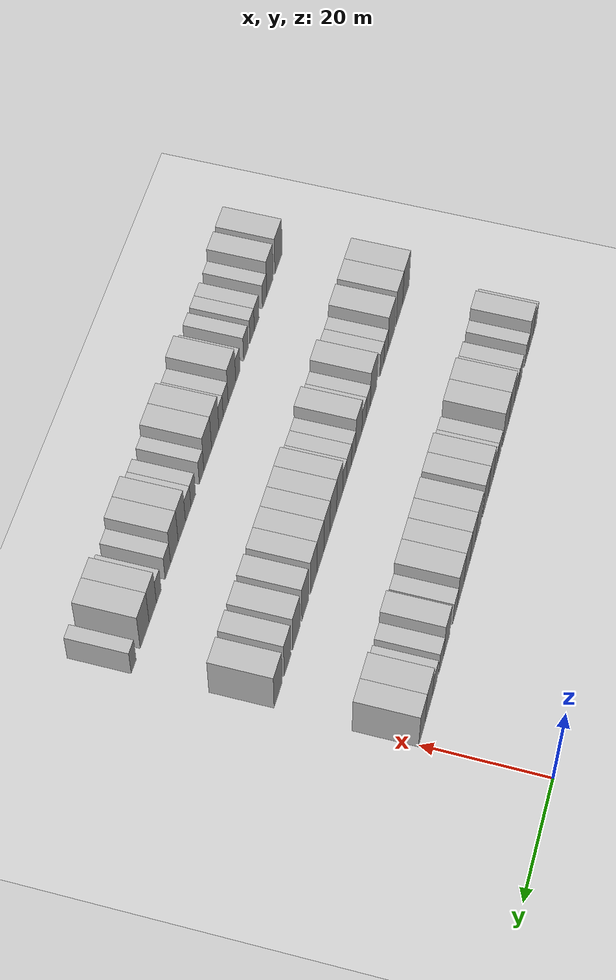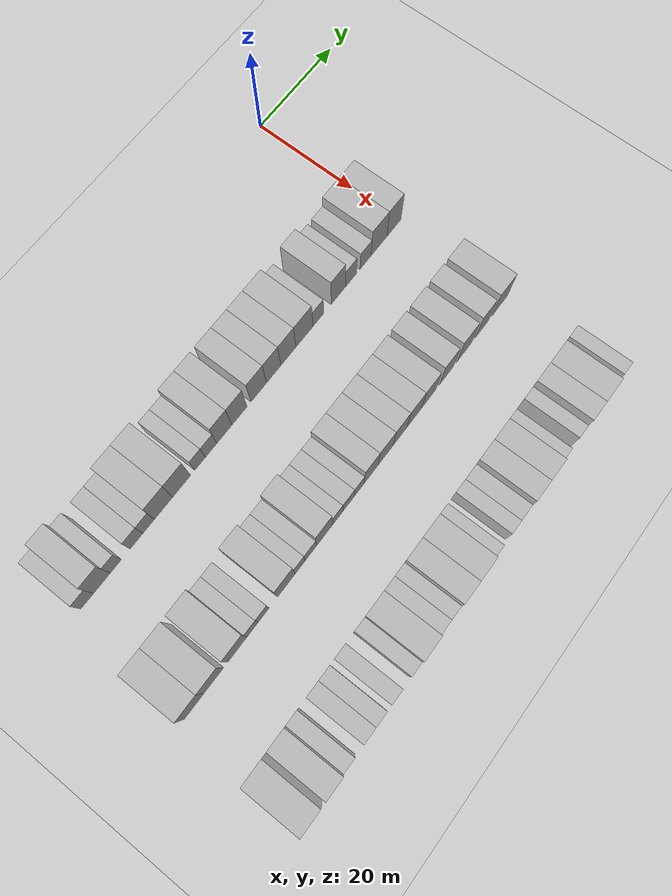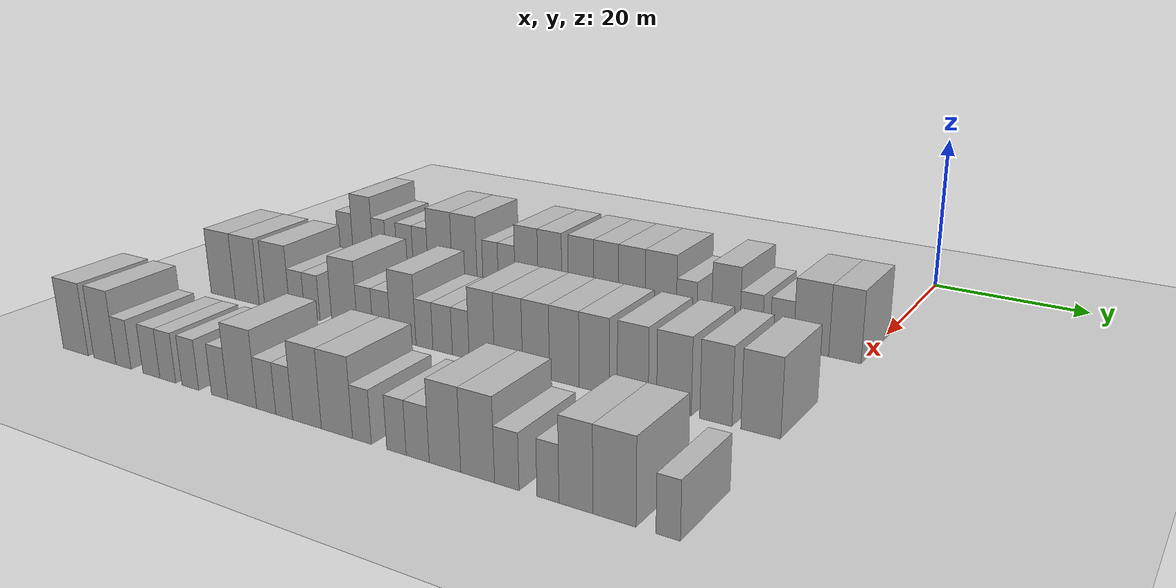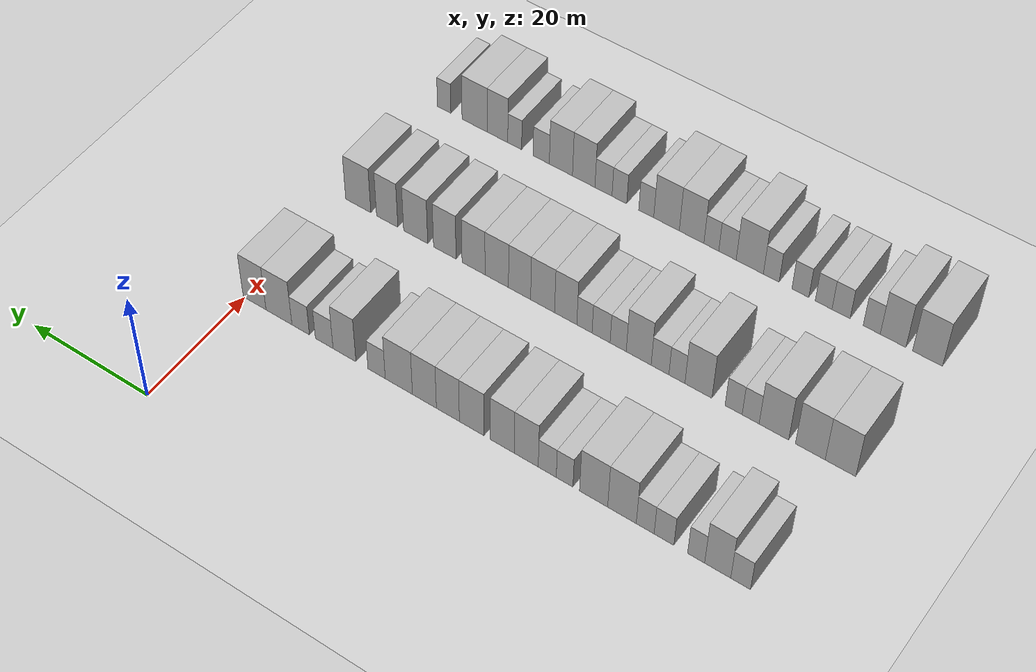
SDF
<sdf version="1.6">
 <world name="default">
  <include><name>ground_plane_1</name><uri>model://HANNAS_ground_plane</uri></include>
  <model name="building_45">
   <static>1</static>
   <pose>25.0000 -78.2476 0 0.000000 0.000000 0.000000</pose>
   <link name="link">
    <pose>0 0 3.00 0 0 0</pose>
    <collision name="collision"><geometry><box><size>10.0000 2.8178 6.0000</size></box></geometry></collision>
    <visual name="visual">
     <cast_shadows>0</cast_shadows>
     <geometry><box><size>10.0000 2.8178 6.0000</size></box></geometry>
     <material>
      <script>
       <uri>model://HANNAS_wall/materials/scripts</uri>
       <uri>model://HANNAS_wall/materials/textures</uri>
       <name>vrc/HANNAS_wall</name>
      </script>
     </material>
    </visual>
   </link>
  </model>
  <model name="building_46">
   <static>1</static>
   <pose>25.0000 -74.9602 0 0.000000 0.000000 0.000000</pose>
   <link name="link">
    <pose>0 0 4.50 0 0 0</pose>
    <collision name="collision"><geometry><box><size>10.0000 3.7570 9.0000</size></box></geometry></collision>
    <visual name="visual">
     <cast_shadows>0</cast_shadows>
     <geometry><box><size>10.0000 3.7570 9.0000</size></box></geometry>
     <material>
      <script>
       <uri>model://HANNAS_wall/materials/scripts</uri>
       <uri>model://HANNAS_wall/materials/textures</uri>
       <name>vrc/HANNAS_wall</name>
      </script>
     </material>
    </visual>
   </link>
  </model>
  <model name="building_47">
   <static>1</static>
   <pose>25.0000 -71.8492 0 0.000000 0.000000 0.000000</pose>
   <link name="link">
    <pose>0 0 3.00 0 0 0</pose>
    <collision name="collision"><geometry><box><size>10.0000 2.4650 6.0000</size></box></geometry></collision>
    <visual name="visual">
     <cast_shadows>0</cast_shadows>
     <geometry><box><size>10.0000 2.4650 6.0000</size></box></geometry>
     <material>
      <script>
       <uri>model://HANNAS_wall/materials/scripts</uri>
       <uri>model://HANNAS_wall/materials/textures</uri>
       <name>vrc/HANNAS_wall</name>
      </script>
     </material>
    </visual>
   </link>
  </model>
  <model name="building_48">
   <static>1</static>
   <pose>25.0000 -67.1630 0 0.000000 0.000000 0.000000</pose>
   <link name="link">
    <pose>0 0 3.00 0 0 0</pose>
    <collision name="collision"><geometry><box><size>10.0000 2.9074 6.0000</size></box></geometry></collision>
    <visual name="visual">
     <cast_shadows>0</cast_shadows>
     <geometry><box><size>10.0000 2.9074 6.0000</size></box></geometry>
     <material>
      <script>
       <uri>model://HANNAS_wall/materials/scripts</uri>
       <uri>model://HANNAS_wall/materials/textures</uri>
       <name>vrc/HANNAS_wall</name>
      </script>
     </material>
    </visual>
   </link>
  </model>
  <model name="building_49">
   <static>1</static>
   <pose>25.0000 -64.3875 0 0.000000 0.000000 0.000000</pose>
   <link name="link">
    <pose>0 0 3.00 0 0 0</pose>
    <collision name="collision"><geometry><box><size>10.0000 2.6436 6.0000</size></box></geometry></collision>
    <visual name="visual">
     <cast_shadows>0</cast_shadows>
     <geometry><box><size>10.0000 2.6436 6.0000</size></box></geometry>
     <material>
      <script>
       <uri>model://HANNAS_wall/materials/scripts</uri>
       <uri>model://HANNAS_wall/materials/textures</uri>
       <name>vrc/HANNAS_wall</name>
      </script>
     </material>
    </visual>
   </link>
  </model>
  <model name="building_50">
   <static>1</static>
   <pose>25.0000 -60.9293 0 0.000000 0.000000 0.000000</pose>
   <link name="link">
    <pose>0 0 4.50 0 0 0</pose>
    <collision name="collision"><geometry><box><size>10.0000 4.2727 9.0000</size></box></geometry></collision>
    <visual name="visual">
     <cast_shadows>0</cast_shadows>
     <geometry><box><size>10.0000 4.2727 9.0000</size></box></geometry>
     <material>
      <script>
       <uri>model://HANNAS_wall/materials/scripts</uri>
       <uri>model://HANNAS_wall/materials/textures</uri>
       <name>vrc/HANNAS_wall</name>
      </script>
     </material>
    </visual>
   </link>
  </model>
  <model name="building_51">
   <static>1</static>
   <pose>25.0000 -56.6672 0 0.000000 0.000000 0.000000</pose>
   <link name="link">
    <pose>0 0 4.50 0 0 0</pose>
    <collision name="collision"><geometry><box><size>10.0000 4.2515 9.0000</size></box></geometry></collision>
    <visual name="visual">
     <cast_shadows>0</cast_shadows>
     <geometry><box><size>10.0000 4.2515 9.0000</size></box></geometry>
     <material>
      <script>
       <uri>model://HANNAS_wall/materials/scripts</uri>
       <uri>model://HANNAS_wall/materials/textures</uri>
       <name>vrc/HANNAS_wall</name>
      </script>
     </material>
    </visual>
   </link>
  </model>
  <model name="building_52">
   <static>1</static>
   <pose>25.0000 -52.2682 0 0.000000 0.000000 0.000000</pose>
   <link name="link">
    <pose>0 0 3.00 0 0 0</pose>
    <collision name="collision"><geometry><box><size>10.0000 2.5465 6.0000</size></box></geometry></collision>
    <visual name="visual">
     <cast_shadows>0</cast_shadows>
     <geometry><box><size>10.0000 2.5465 6.0000</size></box></geometry>
     <material>
      <script>
       <uri>model://HANNAS_wall/materials/scripts</uri>
       <uri>model://HANNAS_wall/materials/textures</uri>
       <name>vrc/HANNAS_wall</name>
      </script>
     </material>
    </visual>
   </link>
  </model>
  <model name="building_53">
   <static>1</static>
   <pose>25.0000 -49.6082 0 0.000000 0.000000 0.000000</pose>
   <link name="link">
    <pose>0 0 3.00 0 0 0</pose>
    <collision name="collision"><geometry><box><size>10.0000 2.7734 6.0000</size></box></geometry></collision>
    <visual name="visual">
     <cast_shadows>0</cast_shadows>
     <geometry><box><size>10.0000 2.7734 6.0000</size></box></geometry>
     <material>
      <script>
       <uri>model://HANNAS_wall/materials/scripts</uri>
       <uri>model://HANNAS_wall/materials/textures</uri>
       <name>vrc/HANNAS_wall</name>
      </script>
     </material>
    </visual>
   </link>
  </model>
  <model name="building_54">
   <static>1</static>
   <pose>25.0000 -46.3654 0 0.000000 0.000000 0.000000</pose>
   <link name="link">
    <pose>0 0 4.50 0 0 0</pose>
    <collision name="collision"><geometry><box><size>10.0000 3.7123 9.0000</size></box></geometry></collision>
    <visual name="visual">
     <cast_shadows>0</cast_shadows>
     <geometry><box><size>10.0000 3.7123 9.0000</size></box></geometry>
     <material>
      <script>
       <uri>model://HANNAS_wall/materials/scripts</uri>
       <uri>model://HANNAS_wall/materials/textures</uri>
       <name>vrc/HANNAS_wall</name>
      </script>
     </material>
    </visual>
   </link>
  </model>
  <model name="building_55">
   <static>1</static>
   <pose>25.0000 -42.6346 0 0.000000 0.000000 0.000000</pose>
   <link name="link">
    <pose>0 0 4.50 0 0 0</pose>
    <collision name="collision"><geometry><box><size>10.0000 3.7492 9.0000</size></box></geometry></collision>
    <visual name="visual">
     <cast_shadows>0</cast_shadows>
     <geometry><box><size>10.0000 3.7492 9.0000</size></box></geometry>
     <material>
      <script>
       <uri>model://HANNAS_wall/materials/scripts</uri>
       <uri>model://HANNAS_wall/materials/textures</uri>
       <name>vrc/HANNAS_wall</name>
      </script>
     </material>
    </visual>
   </link>
  </model>
  <model name="building_56">
   <static>1</static>
   <pose>25.0000 -37.8027 0 0.000000 0.000000 0.000000</pose>
   <link name="link">
    <pose>0 0 4.50 0 0 0</pose>
    <collision name="collision"><geometry><box><size>10.0000 3.9146 9.0000</size></box></geometry></collision>
    <visual name="visual">
     <cast_shadows>0</cast_shadows>
     <geometry><box><size>10.0000 3.9146 9.0000</size></box></geometry>
     <material>
      <script>
       <uri>model://HANNAS_wall/materials/scripts</uri>
       <uri>model://HANNAS_wall/materials/textures</uri>
       <name>vrc/HANNAS_wall</name>
      </script>
     </material>
    </visual>
   </link>
  </model>
  <model name="building_57">
   <static>1</static>
   <pose>25.0000 -34.0025 0 0.000000 0.000000 0.000000</pose>
   <link name="link">
    <pose>0 0 4.50 0 0 0</pose>
    <collision name="collision"><geometry><box><size>10.0000 3.6856 9.0000</size></box></geometry></collision>
    <visual name="visual">
     <cast_shadows>0</cast_shadows>
     <geometry><box><size>10.0000 3.6856 9.0000</size></box></geometry>
     <material>
      <script>
       <uri>model://HANNAS_wall/materials/scripts</uri>
       <uri>model://HANNAS_wall/materials/textures</uri>
       <name>vrc/HANNAS_wall</name>
      </script>
     </material>
    </visual>
   </link>
  </model>
  <model name="building_58">
   <static>1</static>
   <pose>25.0000 -30.2208 0 0.000000 0.000000 0.000000</pose>
   <link name="link">
    <pose>0 0 4.50 0 0 0</pose>
    <collision name="collision"><geometry><box><size>10.0000 3.8779 9.0000</size></box></geometry></collision>
    <visual name="visual">
     <cast_shadows>0</cast_shadows>
     <geometry><box><size>10.0000 3.8779 9.0000</size></box></geometry>
     <material>
      <script>
       <uri>model://HANNAS_wall/materials/scripts</uri>
       <uri>model://HANNAS_wall/materials/textures</uri>
       <name>vrc/HANNAS_wall</name>
      </script>
     </material>
    </visual>
   </link>
  </model>
  <model name="building_59">
   <static>1</static>
   <pose>25.0000 -26.0557 0 0.000000 0.000000 0.000000</pose>
   <link name="link">
    <pose>0 0 4.50 0 0 0</pose>
    <collision name="collision"><geometry><box><size>10.0000 4.4521 9.0000</size></box></geometry></collision>
    <visual name="visual">
     <cast_shadows>0</cast_shadows>
     <geometry><box><size>10.0000 4.4521 9.0000</size></box></geometry>
     <material>
      <script>
       <uri>model://HANNAS_wall/materials/scripts</uri>
       <uri>model://HANNAS_wall/materials/textures</uri>
       <name>vrc/HANNAS_wall</name>
      </script>
     </material>
    </visual>
   </link>
  </model>
  <model name="building_60">
   <static>1</static>
   <pose>25.0000 -22.4046 0 0.000000 0.000000 0.000000</pose>
   <link name="link">
    <pose>0 0 3.00 0 0 0</pose>
    <collision name="collision"><geometry><box><size>10.0000 2.8502 6.0000</size></box></geometry></collision>
    <visual name="visual">
     <cast_shadows>0</cast_shadows>
     <geometry><box><size>10.0000 2.8502 6.0000</size></box></geometry>
     <material>
      <script>
       <uri>model://HANNAS_wall/materials/scripts</uri>
       <uri>model://HANNAS_wall/materials/textures</uri>
       <name>vrc/HANNAS_wall</name>
      </script>
     </material>
    </visual>
   </link>
  </model>
  <model name="building_61">
   <static>1</static>
   <pose>25.0000 -17.0627 0 0.000000 0.000000 0.000000</pose>
   <link name="link">
    <pose>0 0 4.50 0 0 0</pose>
    <collision name="collision"><geometry><box><size>10.0000 3.8334 9.0000</size></box></geometry></collision>
    <visual name="visual">
     <cast_shadows>0</cast_shadows>
     <geometry><box><size>10.0000 3.8334 9.0000</size></box></geometry>
     <material>
      <script>
       <uri>model://HANNAS_wall/materials/scripts</uri>
       <uri>model://HANNAS_wall/materials/textures</uri>
       <name>vrc/HANNAS_wall</name>
      </script>
     </material>
    </visual>
   </link>
  </model>
  <model name="building_62">
   <static>1</static>
   <pose>25.0000 -13.6539 0 0.000000 0.000000 0.000000</pose>
   <link name="link">
    <pose>0 0 3.00 0 0 0</pose>
    <collision name="collision"><geometry><box><size>10.0000 2.9843 6.0000</size></box></geometry></collision>
    <visual name="visual">
     <cast_shadows>0</cast_shadows>
     <geometry><box><size>10.0000 2.9843 6.0000</size></box></geometry>
     <material>
      <script>
       <uri>model://HANNAS_wall/materials/scripts</uri>
       <uri>model://HANNAS_wall/materials/textures</uri>
       <name>vrc/HANNAS_wall</name>
      </script>
     </material>
    </visual>
   </link>
  </model>
  <model name="building_63">
   <static>1</static>
   <pose>25.0000 -9.6653 0 0.000000 0.000000 0.000000</pose>
   <link name="link">
    <pose>0 0 3.00 0 0 0</pose>
    <collision name="collision"><geometry><box><size>10.0000 2.9928 6.0000</size></box></geometry></collision>
    <visual name="visual">
     <cast_shadows>0</cast_shadows>
     <geometry><box><size>10.0000 2.9928 6.0000</size></box></geometry>
     <material>
      <script>
       <uri>model://HANNAS_wall/materials/scripts</uri>
       <uri>model://HANNAS_wall/materials/textures</uri>
       <name>vrc/HANNAS_wall</name>
      </script>
     </material>
    </visual>
   </link>
  </model>
  <model name="building_64">
   <static>1</static>
   <pose>25.0000 -5.9407 0 0.000000 0.000000 0.000000</pose>
   <link name="link">
    <pose>0 0 4.50 0 0 0</pose>
    <collision name="collision"><geometry><box><size>10.0000 4.4565 9.0000</size></box></geometry></collision>
    <visual name="visual">
     <cast_shadows>0</cast_shadows>
     <geometry><box><size>10.0000 4.4565 9.0000</size></box></geometry>
     <material>
      <script>
       <uri>model://HANNAS_wall/materials/scripts</uri>
       <uri>model://HANNAS_wall/materials/textures</uri>
       <name>vrc/HANNAS_wall</name>
      </script>
     </material>
    </visual>
   </link>
  </model>
  <model name="building_65">
   <static>1</static>
   <pose>25.0000 -1.7336 0 0.000000 0.000000 0.000000</pose>
   <link name="link">
    <pose>0 0 4.50 0 0 0</pose>
    <collision name="collision"><geometry><box><size>10.0000 3.9578 9.0000</size></box></geometry></collision>
    <visual name="visual">
     <cast_shadows>0</cast_shadows>
     <geometry><box><size>10.0000 3.9578 9.0000</size></box></geometry>
     <material>
      <script>
       <uri>model://HANNAS_wall/materials/scripts</uri>
       <uri>model://HANNAS_wall/materials/textures</uri>
       <name>vrc/HANNAS_wall</name>
      </script>
     </material>
    </visual>
   </link>
  </model>
  <model name="building_171">
   <static>1</static>
   <pose>47.0000 -79.8422 0 0.000000 0.000000 0.000000</pose>
   <link name="link">
    <pose>0 0 4.50 0 0 0</pose>
    <collision name="collision"><geometry><box><size>10.0000 4.4530 9.0000</size></box></geometry></collision>
    <visual name="visual">
     <cast_shadows>0</cast_shadows>
     <geometry><box><size>10.0000 4.4530 9.0000</size></box></geometry>
     <material>
      <script>
       <uri>model://HANNAS_wall/materials/scripts</uri>
       <uri>model://HANNAS_wall/materials/textures</uri>
       <name>vrc/HANNAS_wall</name>
      </script>
     </material>
    </visual>
   </link>
  </model>
  <model name="building_172">
   <static>1</static>
   <pose>47.0000 -75.4285 0 0.000000 0.000000 0.000000</pose>
   <link name="link">
    <pose>0 0 4.50 0 0 0</pose>
    <collision name="collision"><geometry><box><size>10.0000 4.3743 9.0000</size></box></geometry></collision>
    <visual name="visual">
     <cast_shadows>0</cast_shadows>
     <geometry><box><size>10.0000 4.3743 9.0000</size></box></geometry>
     <material>
      <script>
       <uri>model://HANNAS_wall/materials/scripts</uri>
       <uri>model://HANNAS_wall/materials/textures</uri>
       <name>vrc/HANNAS_wall</name>
      </script>
     </material>
    </visual>
   </link>
  </model>
  <model name="building_173">
   <static>1</static>
   <pose>47.0000 -70.0341 0 0.000000 0.000000 0.000000</pose>
   <link name="link">
    <pose>0 0 4.50 0 0 0</pose>
    <collision name="collision"><geometry><box><size>10.0000 4.4146 9.0000</size></box></geometry></collision>
    <visual name="visual">
     <cast_shadows>0</cast_shadows>
     <geometry><box><size>10.0000 4.4146 9.0000</size></box></geometry>
     <material>
      <script>
       <uri>model://HANNAS_wall/materials/scripts</uri>
       <uri>model://HANNAS_wall/materials/textures</uri>
       <name>vrc/HANNAS_wall</name>
      </script>
     </material>
    </visual>
   </link>
  </model>
  <model name="building_174">
   <static>1</static>
   <pose>47.0000 -66.5462 0 0.000000 0.000000 0.000000</pose>
   <link name="link">
    <pose>0 0 3.00 0 0 0</pose>
    <collision name="collision"><geometry><box><size>10.0000 2.5612 6.0000</size></box></geometry></collision>
    <visual name="visual">
     <cast_shadows>0</cast_shadows>
     <geometry><box><size>10.0000 2.5612 6.0000</size></box></geometry>
     <material>
      <script>
       <uri>model://HANNAS_wall/materials/scripts</uri>
       <uri>model://HANNAS_wall/materials/textures</uri>
       <name>vrc/HANNAS_wall</name>
      </script>
     </material>
    </visual>
   </link>
  </model>
  <model name="building_175">
   <static>1</static>
   <pose>47.0000 -63.9750 0 0.000000 0.000000 0.000000</pose>
   <link name="link">
    <pose>0 0 3.00 0 0 0</pose>
    <collision name="collision"><geometry><box><size>10.0000 2.5812 6.0000</size></box></geometry></collision>
    <visual name="visual">
     <cast_shadows>0</cast_shadows>
     <geometry><box><size>10.0000 2.5812 6.0000</size></box></geometry>
     <material>
      <script>
       <uri>model://HANNAS_wall/materials/scripts</uri>
       <uri>model://HANNAS_wall/materials/textures</uri>
       <name>vrc/HANNAS_wall</name>
      </script>
     </material>
    </visual>
   </link>
  </model>
  <model name="building_176">
   <static>1</static>
   <pose>47.0000 -58.6025 0 0.000000 0.000000 0.000000</pose>
   <link name="link">
    <pose>0 0 4.50 0 0 0</pose>
    <collision name="collision"><geometry><box><size>10.0000 4.1639 9.0000</size></box></geometry></collision>
    <visual name="visual">
     <cast_shadows>0</cast_shadows>
     <geometry><box><size>10.0000 4.1639 9.0000</size></box></geometry>
     <material>
      <script>
       <uri>model://HANNAS_wall/materials/scripts</uri>
       <uri>model://HANNAS_wall/materials/textures</uri>
       <name>vrc/HANNAS_wall</name>
      </script>
     </material>
    </visual>
   </link>
  </model>
  <model name="building_177">
   <static>1</static>
   <pose>47.0000 -55.2788 0 0.000000 0.000000 0.000000</pose>
   <link name="link">
    <pose>0 0 3.00 0 0 0</pose>
    <collision name="collision"><geometry><box><size>10.0000 2.4835 6.0000</size></box></geometry></collision>
    <visual name="visual">
     <cast_shadows>0</cast_shadows>
     <geometry><box><size>10.0000 2.4835 6.0000</size></box></geometry>
     <material>
      <script>
       <uri>model://HANNAS_wall/materials/scripts</uri>
       <uri>model://HANNAS_wall/materials/textures</uri>
       <name>vrc/HANNAS_wall</name>
      </script>
     </material>
    </visual>
   </link>
  </model>
  <model name="building_178">
   <static>1</static>
   <pose>47.0000 -52.6515 0 0.000000 0.000000 0.000000</pose>
   <link name="link">
    <pose>0 0 3.00 0 0 0</pose>
    <collision name="collision"><geometry><box><size>10.0000 2.7711 6.0000</size></box></geometry></collision>
    <visual name="visual">
     <cast_shadows>0</cast_shadows>
     <geometry><box><size>10.0000 2.7711 6.0000</size></box></geometry>
     <material>
      <script>
       <uri>model://HANNAS_wall/materials/scripts</uri>
       <uri>model://HANNAS_wall/materials/textures</uri>
       <name>vrc/HANNAS_wall</name>
      </script>
     </material>
    </visual>
   </link>
  </model>
  <model name="building_179">
   <static>1</static>
   <pose>47.0000 -49.3037 0 0.000000 0.000000 0.000000</pose>
   <link name="link">
    <pose>0 0 4.50 0 0 0</pose>
    <collision name="collision"><geometry><box><size>10.0000 3.9245 9.0000</size></box></geometry></collision>
    <visual name="visual">
     <cast_shadows>0</cast_shadows>
     <geometry><box><size>10.0000 3.9245 9.0000</size></box></geometry>
     <material>
      <script>
       <uri>model://HANNAS_wall/materials/scripts</uri>
       <uri>model://HANNAS_wall/materials/textures</uri>
       <name>vrc/HANNAS_wall</name>
      </script>
     </material>
    </visual>
   </link>
  </model>
  <model name="building_180">
   <static>1</static>
   <pose>47.0000 -46.0598 0 0.000000 0.000000 0.000000</pose>
   <link name="link">
    <pose>0 0 3.00 0 0 0</pose>
    <collision name="collision"><geometry><box><size>10.0000 2.5633 6.0000</size></box></geometry></collision>
    <visual name="visual">
     <cast_shadows>0</cast_shadows>
     <geometry><box><size>10.0000 2.5633 6.0000</size></box></geometry>
     <material>
      <script>
       <uri>model://HANNAS_wall/materials/scripts</uri>
       <uri>model://HANNAS_wall/materials/textures</uri>
       <name>vrc/HANNAS_wall</name>
      </script>
     </material>
    </visual>
   </link>
  </model>
  <model name="building_181">
   <static>1</static>
   <pose>47.0000 -43.3382 0 0.000000 0.000000 0.000000</pose>
   <link name="link">
    <pose>0 0 3.00 0 0 0</pose>
    <collision name="collision"><geometry><box><size>10.0000 2.8798 6.0000</size></box></geometry></collision>
    <visual name="visual">
     <cast_shadows>0</cast_shadows>
     <geometry><box><size>10.0000 2.8798 6.0000</size></box></geometry>
     <material>
      <script>
       <uri>model://HANNAS_wall/materials/scripts</uri>
       <uri>model://HANNAS_wall/materials/textures</uri>
       <name>vrc/HANNAS_wall</name>
      </script>
     </material>
    </visual>
   </link>
  </model>
  <model name="building_182">
   <static>1</static>
   <pose>47.0000 -40.6703 0 0.000000 0.000000 0.000000</pose>
   <link name="link">
    <pose>0 0 3.00 0 0 0</pose>
    <collision name="collision"><geometry><box><size>10.0000 2.4561 6.0000</size></box></geometry></collision>
    <visual name="visual">
     <cast_shadows>0</cast_shadows>
     <geometry><box><size>10.0000 2.4561 6.0000</size></box></geometry>
     <material>
      <script>
       <uri>model://HANNAS_wall/materials/scripts</uri>
       <uri>model://HANNAS_wall/materials/textures</uri>
       <name>vrc/HANNAS_wall</name>
      </script>
     </material>
    </visual>
   </link>
  </model>
  <model name="building_183">
   <static>1</static>
   <pose>47.0000 -37.6385 0 0.000000 0.000000 0.000000</pose>
   <link name="link">
    <pose>0 0 4.50 0 0 0</pose>
    <collision name="collision"><geometry><box><size>10.0000 3.6074 9.0000</size></box></geometry></collision>
    <visual name="visual">
     <cast_shadows>0</cast_shadows>
     <geometry><box><size>10.0000 3.6074 9.0000</size></box></geometry>
     <material>
      <script>
       <uri>model://HANNAS_wall/materials/scripts</uri>
       <uri>model://HANNAS_wall/materials/textures</uri>
       <name>vrc/HANNAS_wall</name>
      </script>
     </material>
    </visual>
   </link>
  </model>
  <model name="building_184">
   <static>1</static>
   <pose>47.0000 -33.8781 0 0.000000 0.000000 0.000000</pose>
   <link name="link">
    <pose>0 0 4.50 0 0 0</pose>
    <collision name="collision"><geometry><box><size>10.0000 3.9133 9.0000</size></box></geometry></collision>
    <visual name="visual">
     <cast_shadows>0</cast_shadows>
     <geometry><box><size>10.0000 3.9133 9.0000</size></box></geometry>
     <material>
      <script>
       <uri>model://HANNAS_wall/materials/scripts</uri>
       <uri>model://HANNAS_wall/materials/textures</uri>
       <name>vrc/HANNAS_wall</name>
      </script>
     </material>
    </visual>
   </link>
  </model>
  <model name="building_185">
   <static>1</static>
   <pose>47.0000 -30.0944 0 0.000000 0.000000 0.000000</pose>
   <link name="link">
    <pose>0 0 4.50 0 0 0</pose>
    <collision name="collision"><geometry><box><size>10.0000 3.6541 9.0000</size></box></geometry></collision>
    <visual name="visual">
     <cast_shadows>0</cast_shadows>
     <geometry><box><size>10.0000 3.6541 9.0000</size></box></geometry>
     <material>
      <script>
       <uri>model://HANNAS_wall/materials/scripts</uri>
       <uri>model://HANNAS_wall/materials/textures</uri>
       <name>vrc/HANNAS_wall</name>
      </script>
     </material>
    </visual>
   </link>
  </model>
  <model name="building_186">
   <static>1</static>
   <pose>47.0000 -26.3149 0 0.000000 0.000000 0.000000</pose>
   <link name="link">
    <pose>0 0 4.50 0 0 0</pose>
    <collision name="collision"><geometry><box><size>10.0000 3.9049 9.0000</size></box></geometry></collision>
    <visual name="visual">
     <cast_shadows>0</cast_shadows>
     <geometry><box><size>10.0000 3.9049 9.0000</size></box></geometry>
     <material>
      <script>
       <uri>model://HANNAS_wall/materials/scripts</uri>
       <uri>model://HANNAS_wall/materials/textures</uri>
       <name>vrc/HANNAS_wall</name>
      </script>
     </material>
    </visual>
   </link>
  </model>
  <model name="building_187">
   <static>1</static>
   <pose>47.0000 -22.4265 0 0.000000 0.000000 0.000000</pose>
   <link name="link">
    <pose>0 0 4.50 0 0 0</pose>
    <collision name="collision"><geometry><box><size>10.0000 3.8719 9.0000</size></box></geometry></collision>
    <visual name="visual">
     <cast_shadows>0</cast_shadows>
     <geometry><box><size>10.0000 3.8719 9.0000</size></box></geometry>
     <material>
      <script>
       <uri>model://HANNAS_wall/materials/scripts</uri>
       <uri>model://HANNAS_wall/materials/textures</uri>
       <name>vrc/HANNAS_wall</name>
      </script>
     </material>
    </visual>
   </link>
  </model>
  <model name="building_188">
   <static>1</static>
   <pose>47.0000 -17.5689 0 0.000000 0.000000 0.000000</pose>
   <link name="link">
    <pose>0 0 4.50 0 0 0</pose>
    <collision name="collision"><geometry><box><size>10.0000 3.8433 9.0000</size></box></geometry></collision>
    <visual name="visual">
     <cast_shadows>0</cast_shadows>
     <geometry><box><size>10.0000 3.8433 9.0000</size></box></geometry>
     <material>
      <script>
       <uri>model://HANNAS_wall/materials/scripts</uri>
       <uri>model://HANNAS_wall/materials/textures</uri>
       <name>vrc/HANNAS_wall</name>
      </script>
     </material>
    </visual>
   </link>
  </model>
  <model name="building_189">
   <static>1</static>
   <pose>47.0000 -12.5710 0 0.000000 0.000000 0.000000</pose>
   <link name="link">
    <pose>0 0 4.50 0 0 0</pose>
    <collision name="collision"><geometry><box><size>10.0000 4.1526 9.0000</size></box></geometry></collision>
    <visual name="visual">
     <cast_shadows>0</cast_shadows>
     <geometry><box><size>10.0000 4.1526 9.0000</size></box></geometry>
     <material>
      <script>
       <uri>model://HANNAS_wall/materials/scripts</uri>
       <uri>model://HANNAS_wall/materials/textures</uri>
       <name>vrc/HANNAS_wall</name>
      </script>
     </material>
    </visual>
   </link>
  </model>
  <model name="building_190">
   <static>1</static>
   <pose>47.0000 -7.6358 0 0.000000 0.000000 0.000000</pose>
   <link name="link">
    <pose>0 0 4.50 0 0 0</pose>
    <collision name="collision"><geometry><box><size>10.0000 3.7178 9.0000</size></box></geometry></collision>
    <visual name="visual">
     <cast_shadows>0</cast_shadows>
     <geometry><box><size>10.0000 3.7178 9.0000</size></box></geometry>
     <material>
      <script>
       <uri>model://HANNAS_wall/materials/scripts</uri>
       <uri>model://HANNAS_wall/materials/textures</uri>
       <name>vrc/HANNAS_wall</name>
      </script>
     </material>
    </visual>
   </link>
  </model>
  <model name="building_191">
   <static>1</static>
   <pose>47.0000 -2.5589 0 0.000000 0.000000 0.000000</pose>
   <link name="link">
    <pose>0 0 4.50 0 0 0</pose>
    <collision name="collision"><geometry><box><size>10.0000 4.4360 9.0000</size></box></geometry></collision>
    <visual name="visual">
     <cast_shadows>0</cast_shadows>
     <geometry><box><size>10.0000 4.4360 9.0000</size></box></geometry>
     <material>
      <script>
       <uri>model://HANNAS_wall/materials/scripts</uri>
       <uri>model://HANNAS_wall/materials/textures</uri>
       <name>vrc/HANNAS_wall</name>
      </script>
     </material>
    </visual>
   </link>
  </model>
  <model name="building_300">
   <static>1</static>
   <pose>69.0000 -80.6633 0 0.000000 0.000000 0.000000</pose>
   <link name="link">
    <pose>0 0 4.50 0 0 0</pose>
    <collision name="collision"><geometry><box><size>10.0000 4.4596 9.0000</size></box></geometry></collision>
    <visual name="visual">
     <cast_shadows>0</cast_shadows>
     <geometry><box><size>10.0000 4.4596 9.0000</size></box></geometry>
     <material>
      <script>
       <uri>model://HANNAS_wall/materials/scripts</uri>
       <uri>model://HANNAS_wall/materials/textures</uri>
       <name>vrc/HANNAS_wall</name>
      </script>
     </material>
    </visual>
   </link>
  </model>
  <model name="building_301">
   <static>1</static>
   <pose>69.0000 -75.4973 0 0.000000 0.000000 0.000000</pose>
   <link name="link">
    <pose>0 0 4.50 0 0 0</pose>
    <collision name="collision"><geometry><box><size>10.0000 3.8724 9.0000</size></box></geometry></collision>
    <visual name="visual">
     <cast_shadows>0</cast_shadows>
     <geometry><box><size>10.0000 3.8724 9.0000</size></box></geometry>
     <material>
      <script>
       <uri>model://HANNAS_wall/materials/scripts</uri>
       <uri>model://HANNAS_wall/materials/textures</uri>
       <name>vrc/HANNAS_wall</name>
      </script>
     </material>
    </visual>
   </link>
  </model>
  <model name="building_302">
   <static>1</static>
   <pose>69.0000 -72.2646 0 0.000000 0.000000 0.000000</pose>
   <link name="link">
    <pose>0 0 3.00 0 0 0</pose>
    <collision name="collision"><geometry><box><size>10.0000 2.5929 6.0000</size></box></geometry></collision>
    <visual name="visual">
     <cast_shadows>0</cast_shadows>
     <geometry><box><size>10.0000 2.5929 6.0000</size></box></geometry>
     <material>
      <script>
       <uri>model://HANNAS_wall/materials/scripts</uri>
       <uri>model://HANNAS_wall/materials/textures</uri>
       <name>vrc/HANNAS_wall</name>
      </script>
     </material>
    </visual>
   </link>
  </model>
  <model name="building_303">
   <static>1</static>
   <pose>69.0000 -67.5723 0 0.000000 0.000000 0.000000</pose>
   <link name="link">
    <pose>0 0 3.00 0 0 0</pose>
    <collision name="collision"><geometry><box><size>10.0000 2.7916 6.0000</size></box></geometry></collision>
    <visual name="visual">
     <cast_shadows>0</cast_shadows>
     <geometry><box><size>10.0000 2.7916 6.0000</size></box></geometry>
     <material>
      <script>
       <uri>model://HANNAS_wall/materials/scripts</uri>
       <uri>model://HANNAS_wall/materials/textures</uri>
       <name>vrc/HANNAS_wall</name>
      </script>
     </material>
    </visual>
   </link>
  </model>
  <model name="building_304">
   <static>1</static>
   <pose>69.0000 -64.8835 0 0.000000 0.000000 0.000000</pose>
   <link name="link">
    <pose>0 0 3.00 0 0 0</pose>
    <collision name="collision"><geometry><box><size>10.0000 2.5861 6.0000</size></box></geometry></collision>
    <visual name="visual">
     <cast_shadows>0</cast_shadows>
     <geometry><box><size>10.0000 2.5861 6.0000</size></box></geometry>
     <material>
      <script>
       <uri>model://HANNAS_wall/materials/scripts</uri>
       <uri>model://HANNAS_wall/materials/textures</uri>
       <name>vrc/HANNAS_wall</name>
      </script>
     </material>
    </visual>
   </link>
  </model>
  <model name="building_305">
   <static>1</static>
   <pose>69.0000 -61.2662 0 0.000000 0.000000 0.000000</pose>
   <link name="link">
    <pose>0 0 3.00 0 0 0</pose>
    <collision name="collision"><geometry><box><size>10.0000 2.6487 6.0000</size></box></geometry></collision>
    <visual name="visual">
     <cast_shadows>0</cast_shadows>
     <geometry><box><size>10.0000 2.6487 6.0000</size></box></geometry>
     <material>
      <script>
       <uri>model://HANNAS_wall/materials/scripts</uri>
       <uri>model://HANNAS_wall/materials/textures</uri>
       <name>vrc/HANNAS_wall</name>
      </script>
     </material>
    </visual>
   </link>
  </model>
  <model name="building_306">
   <static>1</static>
   <pose>69.0000 -56.6939 0 0.000000 0.000000 0.000000</pose>
   <link name="link">
    <pose>0 0 3.00 0 0 0</pose>
    <collision name="collision"><geometry><box><size>10.0000 2.4958 6.0000</size></box></geometry></collision>
    <visual name="visual">
     <cast_shadows>0</cast_shadows>
     <geometry><box><size>10.0000 2.4958 6.0000</size></box></geometry>
     <material>
      <script>
       <uri>model://HANNAS_wall/materials/scripts</uri>
       <uri>model://HANNAS_wall/materials/textures</uri>
       <name>vrc/HANNAS_wall</name>
      </script>
     </material>
    </visual>
   </link>
  </model>
  <model name="building_307">
   <static>1</static>
   <pose>69.0000 -53.2777 0 0.000000 0.000000 0.000000</pose>
   <link name="link">
    <pose>0 0 4.50 0 0 0</pose>
    <collision name="collision"><geometry><box><size>10.0000 4.3366 9.0000</size></box></geometry></collision>
    <visual name="visual">
     <cast_shadows>0</cast_shadows>
     <geometry><box><size>10.0000 4.3366 9.0000</size></box></geometry>
     <material>
      <script>
       <uri>model://HANNAS_wall/materials/scripts</uri>
       <uri>model://HANNAS_wall/materials/textures</uri>
       <name>vrc/HANNAS_wall</name>
      </script>
     </material>
    </visual>
   </link>
  </model>
  <model name="building_308">
   <static>1</static>
   <pose>69.0000 -49.7149 0 0.000000 0.000000 0.000000</pose>
   <link name="link">
    <pose>0 0 3.00 0 0 0</pose>
    <collision name="collision"><geometry><box><size>10.0000 2.7891 6.0000</size></box></geometry></collision>
    <visual name="visual">
     <cast_shadows>0</cast_shadows>
     <geometry><box><size>10.0000 2.7891 6.0000</size></box></geometry>
     <material>
      <script>
       <uri>model://HANNAS_wall/materials/scripts</uri>
       <uri>model://HANNAS_wall/materials/textures</uri>
       <name>vrc/HANNAS_wall</name>
      </script>
     </material>
    </visual>
   </link>
  </model>
  <model name="building_309">
   <static>1</static>
   <pose>69.0000 -47.1167 0 0.000000 0.000000 0.000000</pose>
   <link name="link">
    <pose>0 0 3.00 0 0 0</pose>
    <collision name="collision"><geometry><box><size>10.0000 2.4073 6.0000</size></box></geometry></collision>
    <visual name="visual">
     <cast_shadows>0</cast_shadows>
     <geometry><box><size>10.0000 2.4073 6.0000</size></box></geometry>
     <material>
      <script>
       <uri>model://HANNAS_wall/materials/scripts</uri>
       <uri>model://HANNAS_wall/materials/textures</uri>
       <name>vrc/HANNAS_wall</name>
      </script>
     </material>
    </visual>
   </link>
  </model>
  <model name="building_310">
   <static>1</static>
   <pose>69.0000 -43.9062 0 0.000000 0.000000 0.000000</pose>
   <link name="link">
    <pose>0 0 4.50 0 0 0</pose>
    <collision name="collision"><geometry><box><size>10.0000 4.0137 9.0000</size></box></geometry></collision>
    <visual name="visual">
     <cast_shadows>0</cast_shadows>
     <geometry><box><size>10.0000 4.0137 9.0000</size></box></geometry>
     <material>
      <script>
       <uri>model://HANNAS_wall/materials/scripts</uri>
       <uri>model://HANNAS_wall/materials/textures</uri>
       <name>vrc/HANNAS_wall</name>
      </script>
     </material>
    </visual>
   </link>
  </model>
  <model name="building_311">
   <static>1</static>
   <pose>69.0000 -39.7926 0 0.000000 0.000000 0.000000</pose>
   <link name="link">
    <pose>0 0 4.50 0 0 0</pose>
    <collision name="collision"><geometry><box><size>10.0000 4.2136 9.0000</size></box></geometry></collision>
    <visual name="visual">
     <cast_shadows>0</cast_shadows>
     <geometry><box><size>10.0000 4.2136 9.0000</size></box></geometry>
     <material>
      <script>
       <uri>model://HANNAS_wall/materials/scripts</uri>
       <uri>model://HANNAS_wall/materials/textures</uri>
       <name>vrc/HANNAS_wall</name>
      </script>
     </material>
    </visual>
   </link>
  </model>
  <model name="building_312">
   <static>1</static>
   <pose>69.0000 -36.4426 0 0.000000 0.000000 0.000000</pose>
   <link name="link">
    <pose>0 0 3.00 0 0 0</pose>
    <collision name="collision"><geometry><box><size>10.0000 2.4863 6.0000</size></box></geometry></collision>
    <visual name="visual">
     <cast_shadows>0</cast_shadows>
     <geometry><box><size>10.0000 2.4863 6.0000</size></box></geometry>
     <material>
      <script>
       <uri>model://HANNAS_wall/materials/scripts</uri>
       <uri>model://HANNAS_wall/materials/textures</uri>
       <name>vrc/HANNAS_wall</name>
      </script>
     </material>
    </visual>
   </link>
  </model>
  <model name="building_313">
   <static>1</static>
   <pose>69.0000 -31.9626 0 0.000000 0.000000 0.000000</pose>
   <link name="link">
    <pose>0 0 3.00 0 0 0</pose>
    <collision name="collision"><geometry><box><size>10.0000 2.4738 6.0000</size></box></geometry></collision>
    <visual name="visual">
     <cast_shadows>0</cast_shadows>
     <geometry><box><size>10.0000 2.4738 6.0000</size></box></geometry>
     <material>
      <script>
       <uri>model://HANNAS_wall/materials/scripts</uri>
       <uri>model://HANNAS_wall/materials/textures</uri>
       <name>vrc/HANNAS_wall</name>
      </script>
     </material>
    </visual>
   </link>
  </model>
  <model name="building_314">
   <static>1</static>
   <pose>69.0000 -29.2864 0 0.000000 0.000000 0.000000</pose>
   <link name="link">
    <pose>0 0 3.00 0 0 0</pose>
    <collision name="collision"><geometry><box><size>10.0000 2.8786 6.0000</size></box></geometry></collision>
    <visual name="visual">
     <cast_shadows>0</cast_shadows>
     <geometry><box><size>10.0000 2.8786 6.0000</size></box></geometry>
     <material>
      <script>
       <uri>model://HANNAS_wall/materials/scripts</uri>
       <uri>model://HANNAS_wall/materials/textures</uri>
       <name>vrc/HANNAS_wall</name>
      </script>
     </material>
    </visual>
   </link>
  </model>
  <model name="building_315">
   <static>1</static>
   <pose>69.0000 -25.9333 0 0.000000 0.000000 0.000000</pose>
   <link name="link">
    <pose>0 0 4.50 0 0 0</pose>
    <collision name="collision"><geometry><box><size>10.0000 3.8275 9.0000</size></box></geometry></collision>
    <visual name="visual">
     <cast_shadows>0</cast_shadows>
     <geometry><box><size>10.0000 3.8275 9.0000</size></box></geometry>
     <material>
      <script>
       <uri>model://HANNAS_wall/materials/scripts</uri>
       <uri>model://HANNAS_wall/materials/textures</uri>
       <name>vrc/HANNAS_wall</name>
      </script>
     </material>
    </visual>
   </link>
  </model>
  <model name="building_316">
   <static>1</static>
   <pose>69.0000 -22.0320 0 0.000000 0.000000 0.000000</pose>
   <link name="link">
    <pose>0 0 4.50 0 0 0</pose>
    <collision name="collision"><geometry><box><size>10.0000 3.9751 9.0000</size></box></geometry></collision>
    <visual name="visual">
     <cast_shadows>0</cast_shadows>
     <geometry><box><size>10.0000 3.9751 9.0000</size></box></geometry>
     <material>
      <script>
       <uri>model://HANNAS_wall/materials/scripts</uri>
       <uri>model://HANNAS_wall/materials/textures</uri>
       <name>vrc/HANNAS_wall</name>
      </script>
     </material>
    </visual>
   </link>
  </model>
  <model name="building_317">
   <static>1</static>
   <pose>69.0000 -18.6428 0 0.000000 0.000000 0.000000</pose>
   <link name="link">
    <pose>0 0 3.00 0 0 0</pose>
    <collision name="collision"><geometry><box><size>10.0000 2.8034 6.0000</size></box></geometry></collision>
    <visual name="visual">
     <cast_shadows>0</cast_shadows>
     <geometry><box><size>10.0000 2.8034 6.0000</size></box></geometry>
     <material>
      <script>
       <uri>model://HANNAS_wall/materials/scripts</uri>
       <uri>model://HANNAS_wall/materials/textures</uri>
       <name>vrc/HANNAS_wall</name>
      </script>
     </material>
    </visual>
   </link>
  </model>
  <model name="building_318">
   <static>1</static>
   <pose>69.0000 -14.0308 0 0.000000 0.000000 0.000000</pose>
   <link name="link">
    <pose>0 0 3.00 0 0 0</pose>
    <collision name="collision"><geometry><box><size>10.0000 2.4206 6.0000</size></box></geometry></collision>
    <visual name="visual">
     <cast_shadows>0</cast_shadows>
     <geometry><box><size>10.0000 2.4206 6.0000</size></box></geometry>
     <material>
      <script>
       <uri>model://HANNAS_wall/materials/scripts</uri>
       <uri>model://HANNAS_wall/materials/textures</uri>
       <name>vrc/HANNAS_wall</name>
      </script>
     </material>
    </visual>
   </link>
  </model>
  <model name="building_319">
   <static>1</static>
   <pose>69.0000 -11.0063 0 0.000000 0.000000 0.000000</pose>
   <link name="link">
    <pose>0 0 4.50 0 0 0</pose>
    <collision name="collision"><geometry><box><size>10.0000 3.6282 9.0000</size></box></geometry></collision>
    <visual name="visual">
     <cast_shadows>0</cast_shadows>
     <geometry><box><size>10.0000 3.6282 9.0000</size></box></geometry>
     <material>
      <script>
       <uri>model://HANNAS_wall/materials/scripts</uri>
       <uri>model://HANNAS_wall/materials/textures</uri>
       <name>vrc/HANNAS_wall</name>
      </script>
     </material>
    </visual>
   </link>
  </model>
  <model name="building_320">
   <static>1</static>
   <pose>69.0000 -6.9529 0 0.000000 0.000000 0.000000</pose>
   <link name="link">
    <pose>0 0 4.50 0 0 0</pose>
    <collision name="collision"><geometry><box><size>10.0000 4.4787 9.0000</size></box></geometry></collision>
    <visual name="visual">
     <cast_shadows>0</cast_shadows>
     <geometry><box><size>10.0000 4.4787 9.0000</size></box></geometry>
     <material>
      <script>
       <uri>model://HANNAS_wall/materials/scripts</uri>
       <uri>model://HANNAS_wall/materials/textures</uri>
       <name>vrc/HANNAS_wall</name>
      </script>
     </material>
    </visual>
   </link>
  </model>
  <model name="building_321">
   <static>1</static>
   <pose>69.0000 -1.5084 0 0.000000 0.000000 0.000000</pose>
   <link name="link">
    <pose>0 0 3.00 0 0 0</pose>
    <collision name="collision"><geometry><box><size>10.0000 2.4102 6.0000</size></box></geometry></collision>
    <visual name="visual">
     <cast_shadows>0</cast_shadows>
     <geometry><box><size>10.0000 2.4102 6.0000</size></box></geometry>
     <material>
      <script>
       <uri>model://HANNAS_wall/materials/scripts</uri>
       <uri>model://HANNAS_wall/materials/textures</uri>
       <name>vrc/HANNAS_wall</name>
      </script>
     </material>
    </visual>
   </link>
  </model>
 </world>
</sdf>
